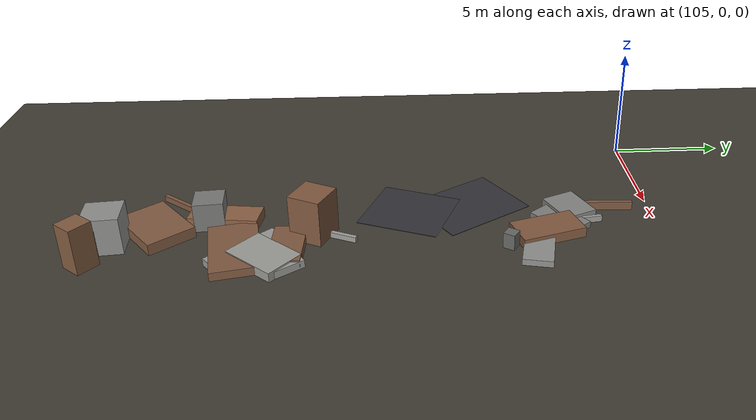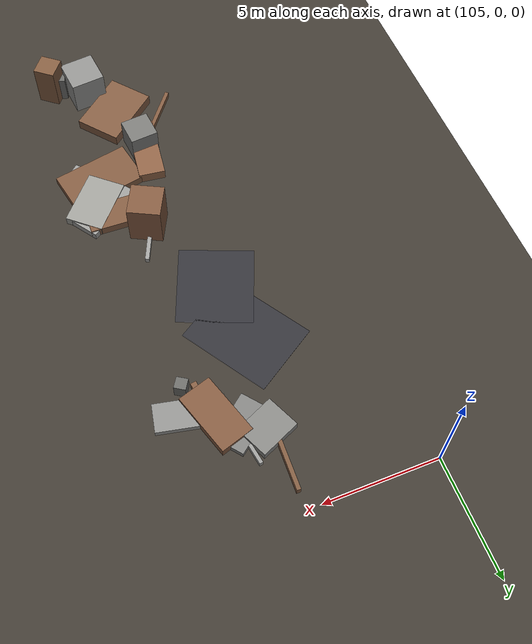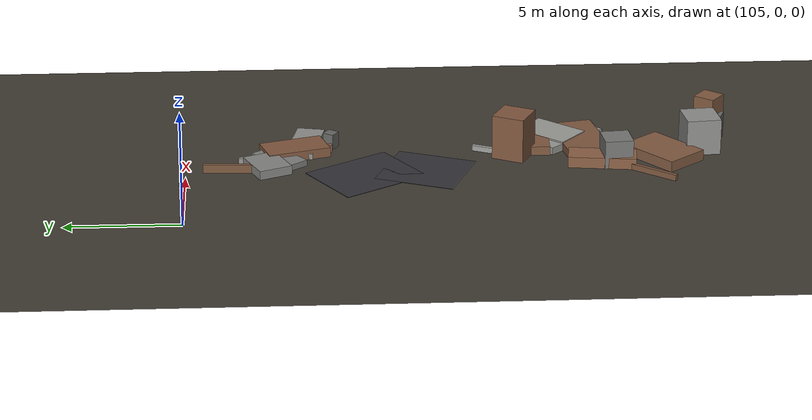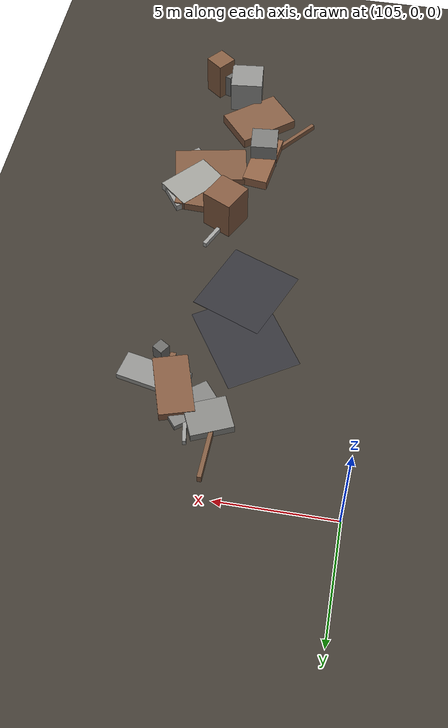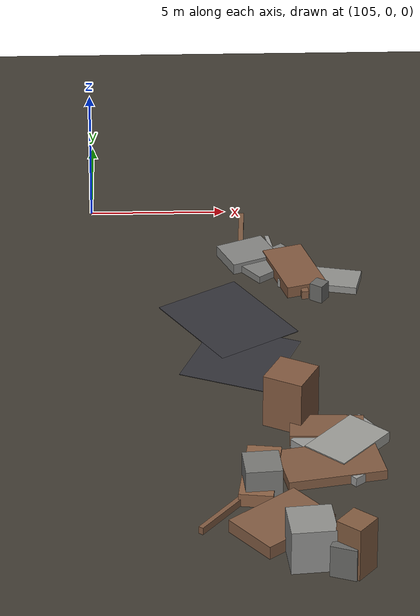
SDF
<sdf version="1.6">
 <world name="navitas_arena">
  <model name="ground_plane">
   <static>true</static>
   <link name="link">
    <collision name="collision">
     <geometry><plane><normal>0 0 1</normal><size>400 400</size></plane></geometry>
     <surface><friction><ode><mu>0.620</mu><mu2>0.620</mu2></ode></friction></surface>
    </collision>
    <visual name="visual">
     <cast_shadows>false</cast_shadows>
     <geometry><plane><normal>0 0 1</normal><size>400 400</size></plane></geometry>
     <material><ambient>0.250 0.230 0.200 1</ambient><diffuse>0.250 0.230 0.200 1</diffuse></material>
    </visual>
   </link>
  </model>
  <model name="road_zor_3_7">
   <static>true</static>
   <pose>110.333 -10.426 0.040 0 0 1.185</pose>
   <link name="link">
    <collision name="col"><geometry><box><size>3.556 3.280 0.020</size></box></geometry></collision>
    <visual name="vis">
     <geometry><box><size>3.556 3.280 0.020</size></box></geometry>
     <material><ambient>0.20 0.20 0.22 1</ambient><diffuse>0.20 0.20 0.22 1</diffuse></material>
    </visual>
   </link>
  </model>
  <model name="road_zor_3_8">
   <static>true</static>
   <pose>109.964 -7.820 0.040 0 0 2.135</pose>
   <link name="link">
    <collision name="col"><geometry><box><size>4.155 3.280 0.020</size></box></geometry></collision>
    <visual name="vis">
     <geometry><box><size>4.155 3.280 0.020</size></box></geometry>
     <material><ambient>0.20 0.20 0.22 1</ambient><diffuse>0.20 0.20 0.22 1</diffuse></material>
    </visual>
   </link>
  </model>
  <model name="deb_zor_3">
   <static>true</static>
   <pose>110.575 -2.100 0.187 0 0 1.529</pose>
   <link name="link">
    <collision name="col"><geometry><box><size>2.701 0.181 0.373</size></box></geometry></collision>
    <visual name="vis">
     <geometry><box><size>2.701 0.181 0.373</size></box></geometry>
     <material><ambient>0.49 0.35 0.25 1</ambient><diffuse>0.49 0.35 0.25 1</diffuse></material>
    </visual>
   </link>
  </model>
  <model name="deb_zor_29">
   <static>true</static>
   <pose>113.816 -16.240 0.201 0 0 0.852</pose>
   <link name="link">
    <collision name="col"><geometry><box><size>2.513 1.707 0.401</size></box></geometry></collision>
    <visual name="vis">
     <geometry><box><size>2.513 1.707 0.401</size></box></geometry>
     <material><ambient>0.61 0.61 0.59 1</ambient><diffuse>0.61 0.61 0.59 1</diffuse></material>
    </visual>
   </link>
  </model>
  <model name="deb_zor_46">
   <static>true</static>
   <pose>110.781 -3.544 0.201 0 0 0.414</pose>
   <link name="link">
    <collision name="col"><geometry><box><size>1.828 1.514 0.403</size></box></geometry></collision>
    <visual name="vis">
     <geometry><box><size>1.828 1.514 0.403</size></box></geometry>
     <material><ambient>0.52 0.52 0.51 1</ambient><diffuse>0.52 0.52 0.51 1</diffuse></material>
    </visual>
   </link>
  </model>
  <model name="deb_zor_61">
   <static>true</static>
   <pose>113.744 -23.287 0.983 0 0 2.466</pose>
   <link name="link">
    <collision name="col"><geometry><box><size>0.966 0.966 1.965</size></box></geometry></collision>
    <visual name="vis">
     <geometry><box><size>0.966 0.966 1.965</size></box></geometry>
     <material><ambient>0.51 0.36 0.25 1</ambient><diffuse>0.51 0.36 0.25 1</diffuse></material>
    </visual>
   </link>
  </model>
  <model name="deb_zor_75">
   <static>true</static>
   <pose>113.335 -17.001 0.166 0 0 2.285</pose>
   <link name="link">
    <collision name="col"><geometry><box><size>3.241 1.043 0.331</size></box></geometry></collision>
    <visual name="vis">
     <geometry><box><size>3.241 1.043 0.331</size></box></geometry>
     <material><ambient>0.60 0.60 0.59 1</ambient><diffuse>0.60 0.60 0.59 1</diffuse></material>
    </visual>
   </link>
  </model>
  <model name="deb_zor_76">
   <static>true</static>
   <pose>111.956 -14.394 0.996 0 0 2.670</pose>
   <link name="link">
    <collision name="col"><geometry><box><size>1.450 1.450 1.991</size></box></geometry></collision>
    <visual name="vis">
     <geometry><box><size>1.450 1.450 1.991</size></box></geometry>
     <material><ambient>0.51 0.35 0.25 1</ambient><diffuse>0.51 0.35 0.25 1</diffuse></material>
    </visual>
   </link>
  </model>
  <model name="deb_zor_127">
   <static>true</static>
   <pose>113.889 -15.823 0.163 0 0 0.604</pose>
   <link name="link">
    <collision name="col"><geometry><box><size>2.126 1.537 0.326</size></box></geometry></collision>
    <visual name="vis">
     <geometry><box><size>2.126 1.537 0.326</size></box></geometry>
     <material><ambient>0.61 0.61 0.60 1</ambient><diffuse>0.61 0.61 0.60 1</diffuse></material>
    </visual>
   </link>
  </model>
  <model name="deb_zor_128">
   <static>true</static>
   <pose>111.408 -20.970 0.241 0 0 0.687</pose>
   <link name="link">
    <collision name="col"><geometry><box><size>2.883 2.068 0.482</size></box></geometry></collision>
    <visual name="vis">
     <geometry><box><size>2.883 2.068 0.482</size></box></geometry>
     <material><ambient>0.51 0.36 0.26 1</ambient><diffuse>0.51 0.36 0.26 1</diffuse></material>
    </visual>
   </link>
  </model>
  <model name="deb_zor_156">
   <static>true</static>
   <pose>113.384 -5.236 0.138 0 0 2.929</pose>
   <link name="link">
    <collision name="col"><geometry><box><size>2.910 1.228 0.275</size></box></geometry></collision>
    <visual name="vis">
     <geometry><box><size>2.910 1.228 0.275</size></box></geometry>
     <material><ambient>0.56 0.56 0.55 1</ambient><diffuse>0.56 0.56 0.55 1</diffuse></material>
    </visual>
   </link>
  </model>
  <model name="deb_zor_183">
   <static>true</static>
   <pose>111.710 -3.432 0.134 0 0 1.726</pose>
   <link name="link">
    <collision name="col"><geometry><box><size>2.321 0.155 0.268</size></box></geometry></collision>
    <visual name="vis">
     <geometry><box><size>2.321 0.155 0.268</size></box></geometry>
     <material><ambient>0.60 0.60 0.59 1</ambient><diffuse>0.60 0.60 0.59 1</diffuse></material>
    </visual>
   </link>
  </model>
  <model name="deb_zor_196">
   <static>true</static>
   <pose>113.313 -6.385 0.342 0 0 0.988</pose>
   <link name="link">
    <collision name="col"><geometry><box><size>0.503 0.503 0.683</size></box></geometry></collision>
    <visual name="vis">
     <geometry><box><size>0.503 0.503 0.683</size></box></geometry>
     <material><ambient>0.41 0.41 0.40 1</ambient><diffuse>0.41 0.41 0.40 1</diffuse></material>
    </visual>
   </link>
  </model>
  <model name="deb_zor_197">
   <static>true</static>
   <pose>112.465 -4.768 0.217 0 0 1.870</pose>
   <link name="link">
    <collision name="col"><geometry><box><size>2.809 1.501 0.435</size></box></geometry></collision>
    <visual name="vis">
     <geometry><box><size>2.809 1.501 0.435</size></box></geometry>
     <material><ambient>0.51 0.35 0.25 1</ambient><diffuse>0.51 0.35 0.25 1</diffuse></material>
    </visual>
   </link>
  </model>
  <model name="deb_zor_205">
   <static>true</static>
   <pose>110.781 -18.202 0.242 0 0 1.438</pose>
   <link name="link">
    <collision name="col"><geometry><box><size>2.978 1.173 0.484</size></box></geometry></collision>
    <visual name="vis">
     <geometry><box><size>2.978 1.173 0.484</size></box></geometry>
     <material><ambient>0.55 0.38 0.27 1</ambient><diffuse>0.55 0.38 0.27 1</diffuse></material>
    </visual>
   </link>
  </model>
  <model name="deb_zor_216">
   <static>true</static>
   <pose>113.448 -23.394 0.596 0 0 2.793</pose>
   <link name="link">
    <collision name="col"><geometry><box><size>0.923 0.923 1.193</size></box></geometry></collision>
    <visual name="vis">
     <geometry><box><size>0.923 0.923 1.193</size></box></geometry>
     <material><ambient>0.41 0.41 0.40 1</ambient><diffuse>0.41 0.41 0.40 1</diffuse></material>
    </visual>
   </link>
  </model>
  <model name="deb_zor_224">
   <static>true</static>
   <pose>111.613 -4.073 0.136 0 0 0.668</pose>
   <link name="link">
    <collision name="col"><geometry><box><size>2.180 1.352 0.273</size></box></geometry></collision>
    <visual name="vis">
     <geometry><box><size>2.180 1.352 0.273</size></box></geometry>
     <material><ambient>0.50 0.50 0.49 1</ambient><diffuse>0.50 0.50 0.49 1</diffuse></material>
    </visual>
   </link>
  </model>
  <model name="deb_zor_230">
   <static>true</static>
   <pose>109.633 -20.030 0.134 0 0 0.902</pose>
   <link name="link">
    <collision name="col"><geometry><box><size>2.939 0.172 0.268</size></box></geometry></collision>
    <visual name="vis">
     <geometry><box><size>2.939 0.172 0.268</size></box></geometry>
     <material><ambient>0.50 0.35 0.25 1</ambient><diffuse>0.50 0.35 0.25 1</diffuse></material>
    </visual>
   </link>
  </model>
  <model name="deb_zor_236">
   <static>true</static>
   <pose>112.690 -5.309 0.158 0 0 1.678</pose>
   <link name="link">
    <collision name="col"><geometry><box><size>2.209 0.255 0.315</size></box></geometry></collision>
    <visual name="vis">
     <geometry><box><size>2.209 0.255 0.315</size></box></geometry>
     <material><ambient>0.51 0.36 0.26 1</ambient><diffuse>0.51 0.36 0.26 1</diffuse></material>
    </visual>
   </link>
  </model>
  <model name="deb_zor_261">
   <static>true</static>
   <pose>113.154 -15.386 0.196 0 0 3.105</pose>
   <link name="link">
    <collision name="col"><geometry><box><size>2.555 1.344 0.393</size></box></geometry></collision>
    <visual name="vis">
     <geometry><box><size>2.555 1.344 0.393</size></box></geometry>
     <material><ambient>0.50 0.35 0.25 1</ambient><diffuse>0.50 0.35 0.25 1</diffuse></material>
    </visual>
   </link>
  </model>
  <model name="deb_zor_270">
   <static>true</static>
   <pose>112.175 -13.646 0.122 0 0 1.145</pose>
   <link name="link">
    <collision name="col"><geometry><box><size>2.195 0.176 0.244</size></box></geometry></collision>
    <visual name="vis">
     <geometry><box><size>2.195 0.176 0.244</size></box></geometry>
     <material><ambient>0.62 0.62 0.61 1</ambient><diffuse>0.62 0.62 0.61 1</diffuse></material>
    </visual>
   </link>
  </model>
  <model name="deb_zor_275">
   <static>true</static>
   <pose>112.298 -22.706 0.804 0 0 0.096</pose>
   <link name="link">
    <collision name="col"><geometry><box><size>1.529 1.529 1.608</size></box></geometry></collision>
    <visual name="vis">
     <geometry><box><size>1.529 1.529 1.608</size></box></geometry>
     <material><ambient>0.56 0.56 0.55 1</ambient><diffuse>0.56 0.56 0.55 1</diffuse></material>
    </visual>
   </link>
  </model>
  <model name="deb_zor_277">
   <static>true</static>
   <pose>110.825 -18.814 0.628 0 0 0.086</pose>
   <link name="link">
    <collision name="col"><geometry><box><size>1.253 1.253 1.257</size></box></geometry></collision>
    <visual name="vis">
     <geometry><box><size>1.253 1.253 1.257</size></box></geometry>
     <material><ambient>0.47 0.47 0.46 1</ambient><diffuse>0.47 0.47 0.46 1</diffuse></material>
    </visual>
   </link>
  </model>
  <model name="deb_zor_281">
   <static>true</static>
   <pose>113.210 -17.474 0.179 0 0 0.193</pose>
   <link name="link">
    <collision name="col"><geometry><box><size>3.417 2.010 0.359</size></box></geometry></collision>
    <visual name="vis">
     <geometry><box><size>3.417 2.010 0.359</size></box></geometry>
     <material><ambient>0.50 0.35 0.25 1</ambient><diffuse>0.50 0.35 0.25 1</diffuse></material>
    </visual>
   </link>
  </model>
 </world>
</sdf>
